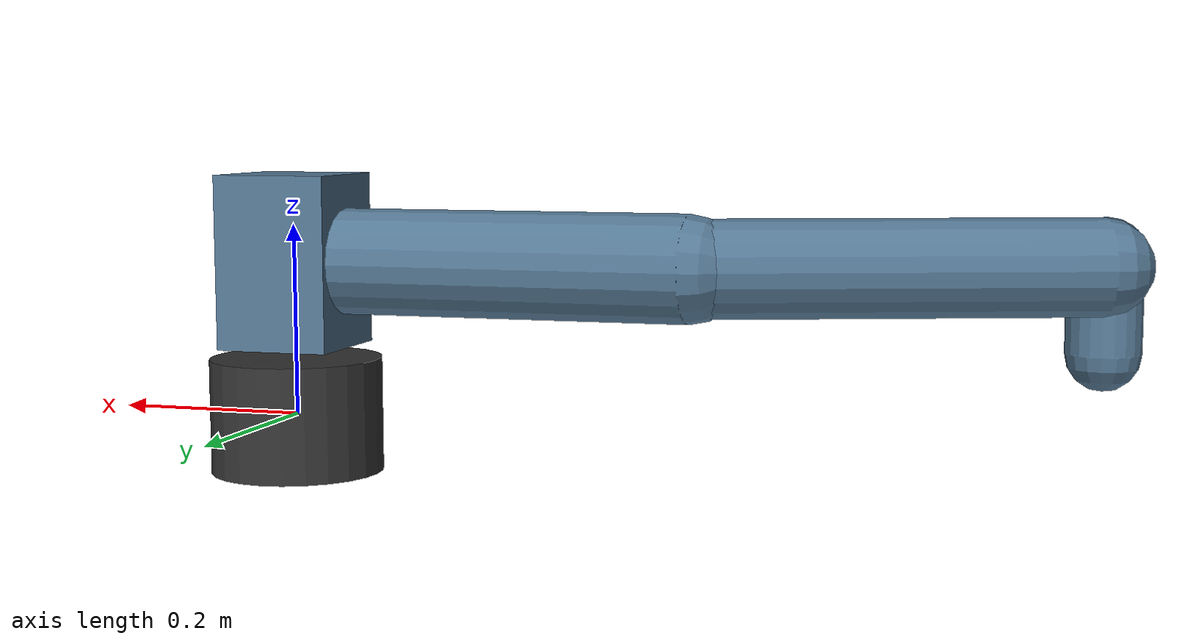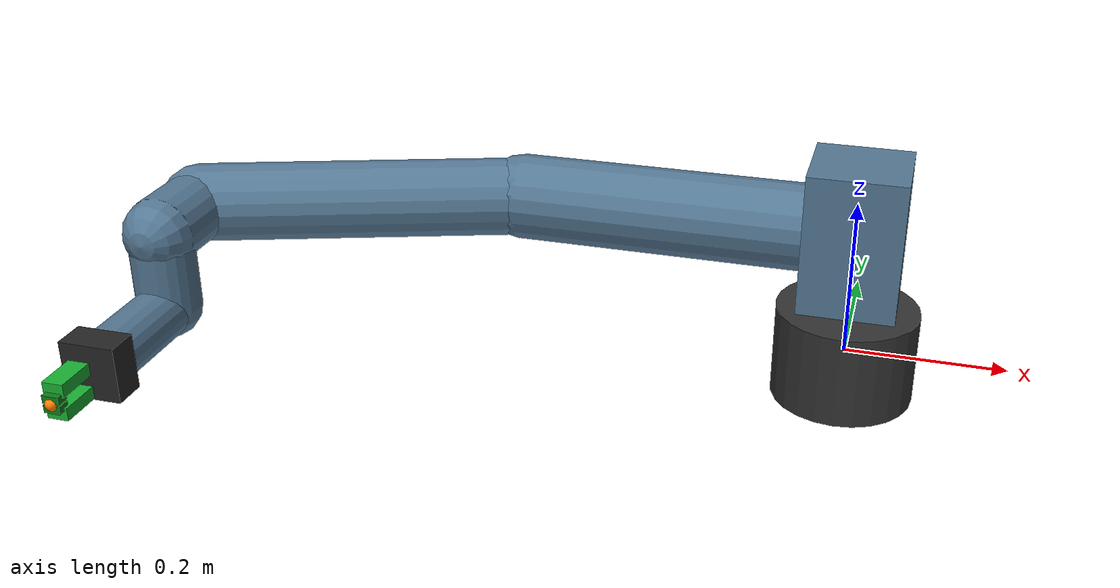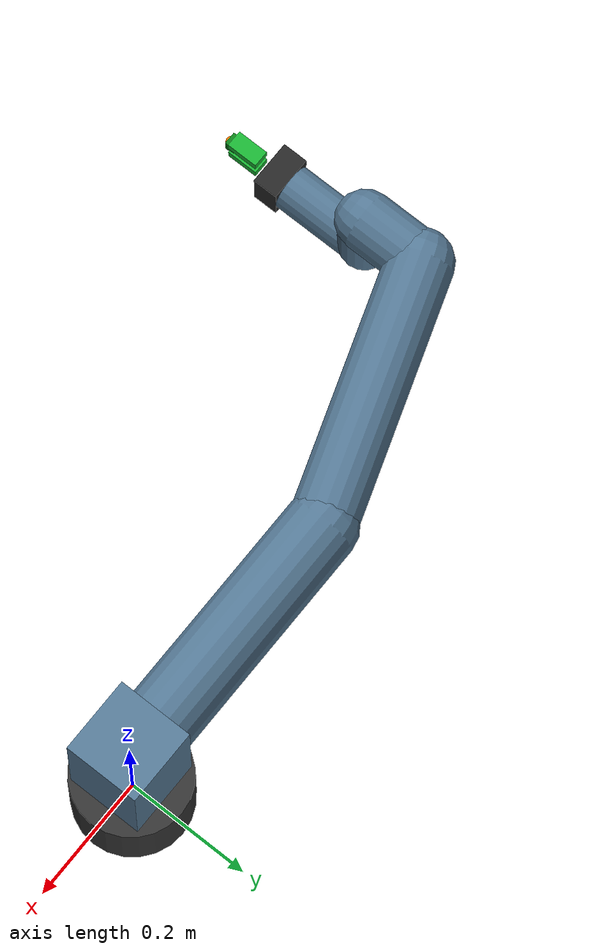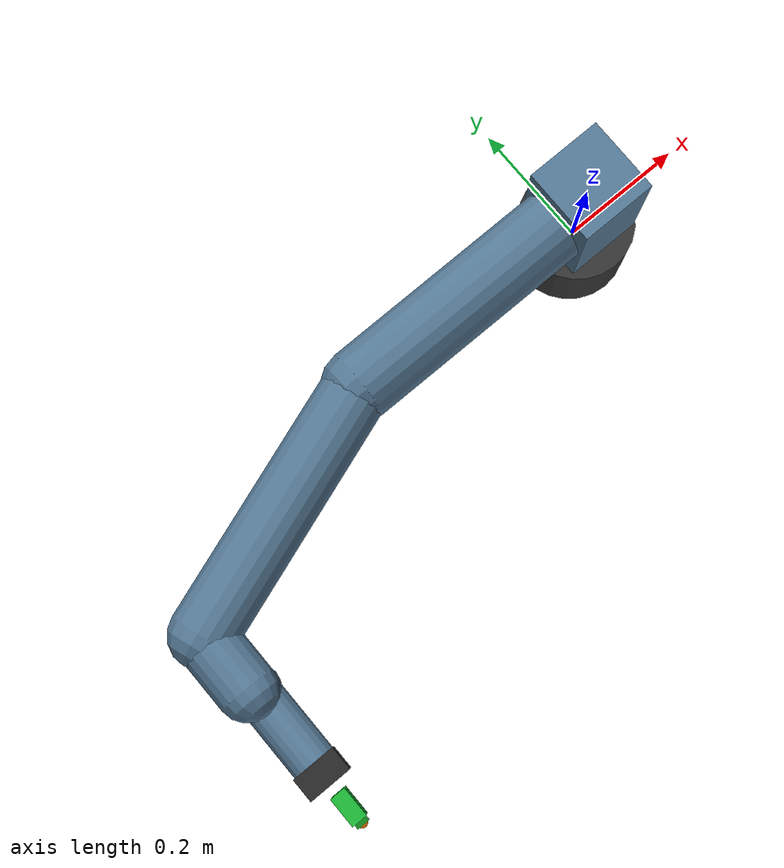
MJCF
<mujoco model="ur5e_lab5_gripper">

  <compiler angle="radian" autolimits="true"/>
  <option timestep="0.001" gravity="0 0 -9.81" integrator="RK4"/>

  <default>
    <joint damping="1.0" armature="0.01" limited="true"/>
    <geom rgba="0.33 0.47 0.58 1" density="800" contype="1" conaffinity="1"/>
    <motor ctrllimited="true" ctrlrange="-180 180"/>
  </default>

  <worldbody>
    <body name="base" pos="0 0 0">
      <geom type="cylinder" size="0.09 0.06" rgba="0.20 0.20 0.20 1"/>
      <body name="shoulder" pos="0 0 0.1625">
        <joint name="shoulder_pan_joint" axis="0 0 1" range="-6.28318530718 6.28318530718"/>
        <geom type="box" size="0.06 0.06 0.09"/>
        <body name="upper_arm" pos="0 0 0" euler="1.57079632679 0 0">
          <joint name="shoulder_lift_joint" axis="0 0 1" range="-6.28318530718 6.28318530718"/>
          <geom type="capsule" fromto="0 0 0 -0.425 0 0" size="0.055"/>
          <body name="forearm" pos="-0.425 0 0">
            <joint name="elbow_joint" axis="0 0 1" range="-6.28318530718 6.28318530718"/>
            <geom type="capsule" fromto="0 0 0 -0.3922 0 0.1333" size="0.05"/>
            <body name="wrist_1" pos="-0.3922 0 0.1333">
              <joint name="wrist_1_joint" axis="0 0 1" range="-6.28318530718 6.28318530718"/>
              <geom type="capsule" fromto="0 0 0 0 0 0.0997" size="0.045"/>
              <body name="wrist_2" pos="0 0 0.0997" euler="1.57079632679 0 0">
                <joint name="wrist_2_joint" axis="0 0 1" range="-6.28318530718 6.28318530718"/>
                <geom type="capsule" fromto="0 0 0 0 0 0.0996" size="0.04"/>
                <body name="wrist_3" pos="0 0 0.0996" euler="-1.57079632679 0 0">
                  <joint name="wrist_3_joint" axis="0 0 1" range="-6.28318530718 6.28318530718"/>
                  <geom type="capsule" fromto="0 0 0 0 0 0.135" size="0.035"/>

                  <!-- tool0 flange -->
                  <body name="tool0" pos="0 0 0.135">
                    <site name="tool_site" pos="0 0 0" size="0.010" rgba="0 0.5 1 1"/>

                    <!-- Gripper adapter plate -->
                    <body name="gripper_base" pos="0 0 0.020">
                      <geom name="gripper_adapter" type="box"
                            size="0.035 0.035 0.020"
                            rgba="0.15 0.15 0.15 1" mass="0.08"/>

                      <!-- Left finger: slides in +Y direction -->
                      <body name="left_finger" pos="0 0.015 0.060">
                        <joint name="left_finger_joint" type="slide"
                               axis="0 1 0" range="0 0.030"
                               damping="2.0" armature="0.0001"/>
                        <geom name="left_finger_geom" type="box"
                              size="0.013 0.008 0.025"
                              rgba="0.1 0.7 0.2 1" mass="0.02"/>
                        <geom name="left_pad" type="box"
                              size="0.010 0.005 0.008"
                              pos="0 -0.009 0.025"
                              friction="1.5 0.005 0.0001"
                              solimp="0.99 0.99 0.001"
                              solref="0.002 1"
                              condim="4"
                              rgba="0.05 0.5 0.1 1"
                              mass="0.005"/>
                      </body>

                      <!-- Right finger: slides in -Y direction (mirror of left) -->
                      <body name="right_finger" pos="0 -0.015 0.060">
                        <joint name="right_finger_joint" type="slide"
                               axis="0 -1 0" range="0 0.030"
                               damping="2.0" armature="0.0001"/>
                        <geom name="right_finger_geom" type="box"
                              size="0.013 0.008 0.025"
                              rgba="0.1 0.7 0.2 1" mass="0.02"/>
                        <!-- Friction pad at inner fingertip (+y = toward
                             centreline for the right finger; see left_pad) -->
                        <geom name="right_pad" type="box"
                              size="0.010 0.005 0.008"
                              pos="0 0.009 0.025"
                              friction="1.5 0.005 0.0001"
                              solimp="0.99 0.99 0.001"
                              solref="0.002 1"
                              condim="4"
                              rgba="0.05 0.5 0.1 1"
                              mass="0.005"/>
                      </body>

                      <!-- Fingertip center site (IK target = gripper tip) -->
                      <site name="gripper_site" pos="0 0 0.090"
                            size="0.008" rgba="1 0.5 0 1"/>
                    </body>
                  </body>
                </body>
              </body>
            </body>
          </body>
        </body>
      </body>
    </body>
  </worldbody>

  <!-- Mirror right finger to left finger (equal opening) -->
  <equality>
    <joint name="finger_mirror"
           joint1="left_finger_joint"
           joint2="right_finger_joint"
           polycoef="0 1 0 0 0"/>
  </equality>

  <actuator>
    <!-- Arm: torque-controlled -->
    <motor name="motor1" joint="shoulder_pan_joint"/>
    <motor name="motor2" joint="shoulder_lift_joint"/>
    <motor name="motor3" joint="elbow_joint"/>
    <motor name="motor4" joint="wrist_1_joint"/>
    <motor name="motor5" joint="wrist_2_joint"/>
    <motor name="motor6" joint="wrist_3_joint"/>
    <!-- Gripper: position-controlled (index 6) -->
    <position name="gripper" joint="left_finger_joint"
              kp="1000" ctrllimited="true" ctrlrange="0 0.030"/>
  </actuator>
</mujoco>
